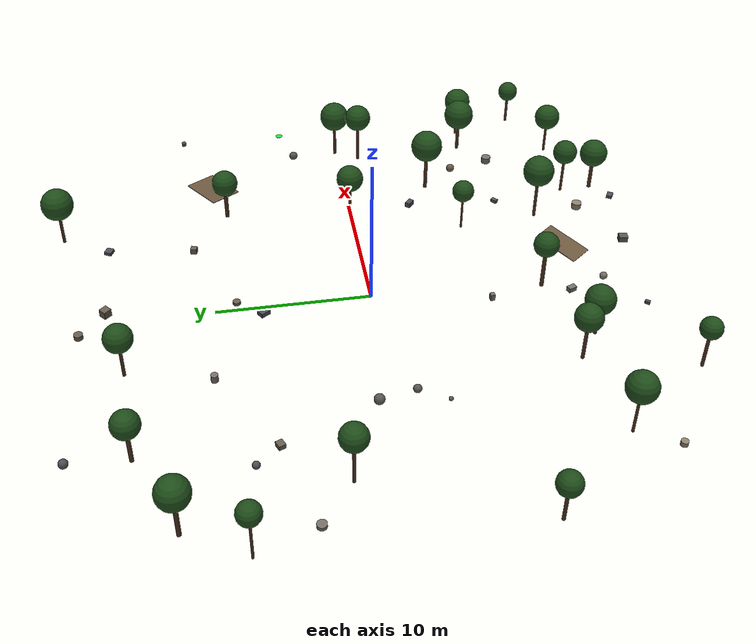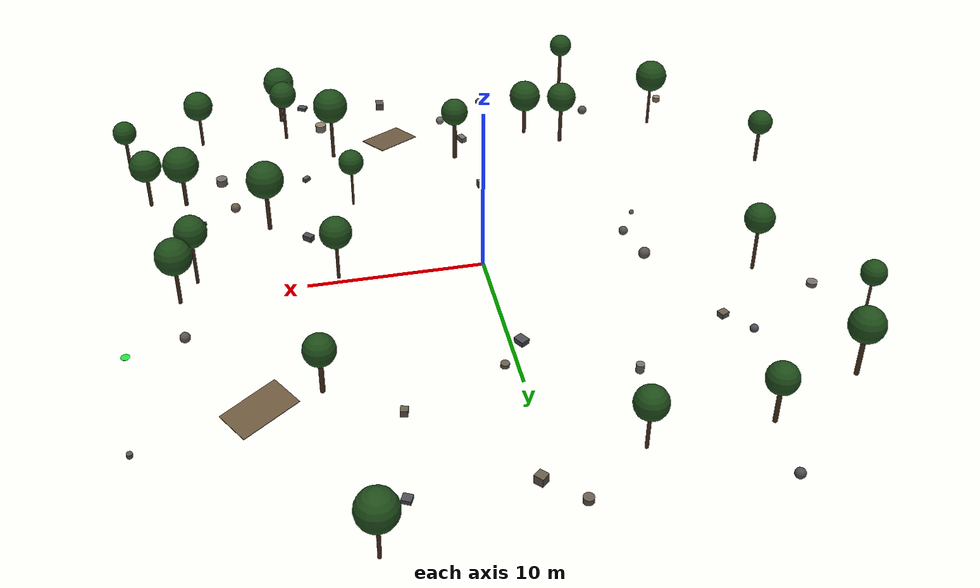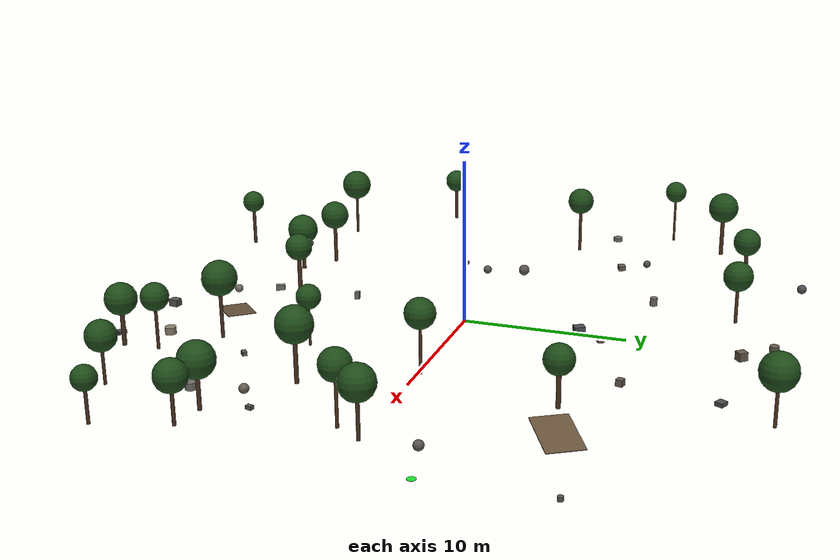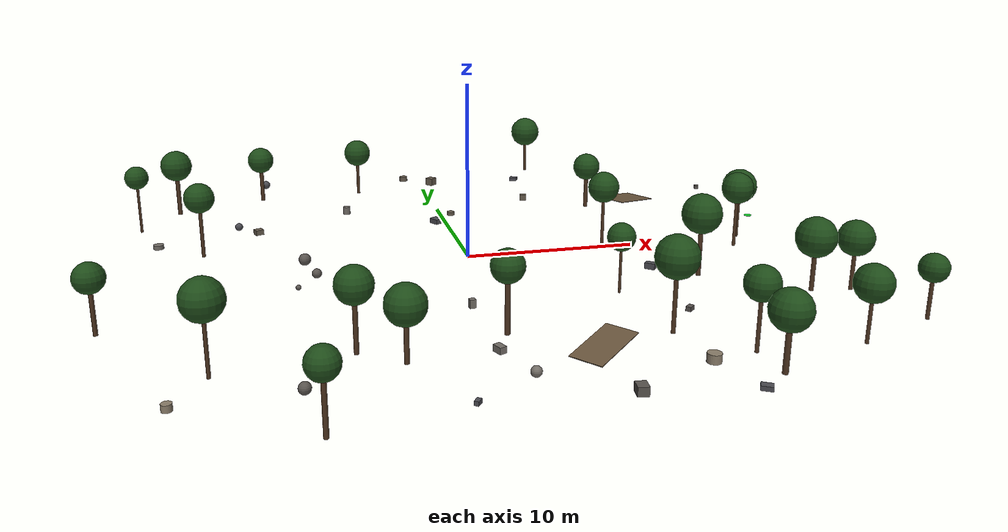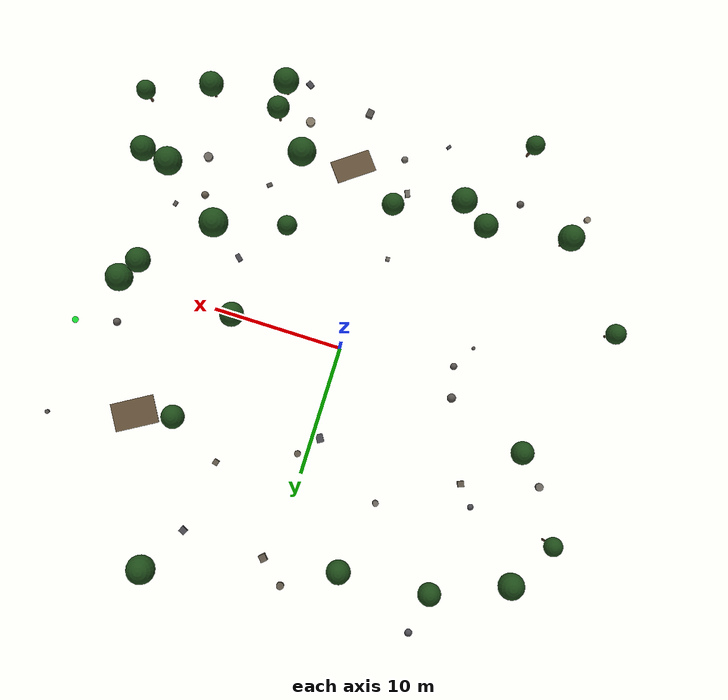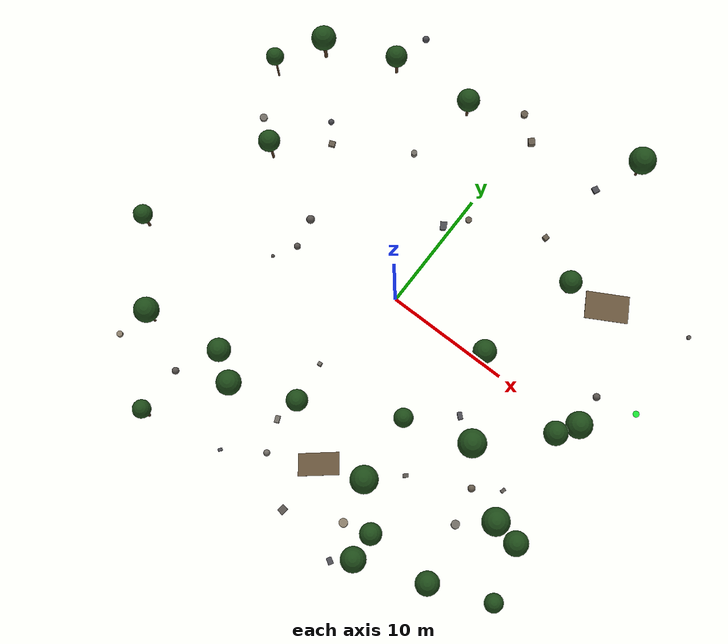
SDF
<sdf version="1.7">
 <world name="offroad_forest">
  <include><uri>model://sun</uri></include>
  <model name="goal_marker">
   <static>true</static>
   <pose>20.000 4.000 0.010 0.0000 0.0000 0.0000</pose>
   <link name="link">
    <visual name="v0">
     <geometry><cylinder><radius>0.250</radius><length>0.020</length></cylinder></geometry>
     <material>
      <ambient>0.10 0.90 0.20 1</ambient>
      <diffuse>0.10 0.90 0.20 1</diffuse>
      <specular>0.02 0.02 0.02 1</specular>
     </material>
    </visual>
   </link>
  </model>
  <model name="slope_0">
   <static>true</static>
   <pose>13.420 9.439 0.169 0.0000 -0.1097 -2.6083</pose>
   <link name="link">
    <collision name="c0"><geometry><box><size>3.456 2.163 0.040</size></box></geometry></collision>
    <visual name="v0">
     <geometry><box><size>3.456 2.163 0.040</size></box></geometry>
     <material>
      <ambient>0.42 0.34 0.24 1</ambient>
      <diffuse>0.42 0.34 0.24 1</diffuse>
      <specular>0.02 0.02 0.02 1</specular>
     </material>
    </visual>
   </link>
  </model>
  <model name="slope_1">
   <static>true</static>
   <pose>3.248 -13.665 0.229 0.0000 -0.1576 0.6711</pose>
   <link name="link">
    <collision name="c0"><geometry><box><size>3.170 1.716 0.040</size></box></geometry></collision>
    <visual name="v0">
     <geometry><box><size>3.170 1.716 0.040</size></box></geometry>
     <material>
      <ambient>0.42 0.34 0.24 1</ambient>
      <diffuse>0.42 0.34 0.24 1</diffuse>
      <specular>0.02 0.02 0.02 1</specular>
     </material>
    </visual>
   </link>
  </model>
  <model name="tree_0">
   <static>true</static>
   <pose>8.920 19.793 0.000 0.0000 0.0000 0.0000</pose>
   <link name="link">
    <collision name="c0">
     <pose>0.000 0.000 1.297 0 0 0</pose>
     <geometry><cylinder><radius>0.100</radius><length>2.594</length></cylinder></geometry>
    </collision>
    <visual name="v0">
     <pose>0.000 0.000 1.297 0 0 0</pose>
     <geometry><cylinder><radius>0.100</radius><length>2.594</length></cylinder></geometry>
     <material>
      <ambient>0.30 0.20 0.12 1</ambient>
      <diffuse>0.30 0.20 0.12 1</diffuse>
      <specular>0.02 0.02 0.02 1</specular>
     </material>
    </visual>
    <visual name="v1">
     <pose>0.000 0.000 3.133 0 0 0</pose>
     <geometry><sphere><radius>1.080</radius></sphere></geometry>
     <material>
      <ambient>0.12 0.30 0.10 1</ambient>
      <diffuse>0.12 0.30 0.10 1</diffuse>
      <specular>0.02 0.02 0.02 1</specular>
     </material>
    </visual>
   </link>
  </model>
  <model name="tree_1">
   <static>true</static>
   <pose>-9.270 -18.563 0.000 0.0000 0.0000 0.0000</pose>
   <link name="link">
    <collision name="c0">
     <pose>0.000 0.000 1.322 0 0 0</pose>
     <geometry><cylinder><radius>0.108</radius><length>2.645</length></cylinder></geometry>
    </collision>
    <visual name="v0">
     <pose>0.000 0.000 1.322 0 0 0</pose>
     <geometry><cylinder><radius>0.108</radius><length>2.645</length></cylinder></geometry>
     <material>
      <ambient>0.30 0.20 0.12 1</ambient>
      <diffuse>0.30 0.20 0.12 1</diffuse>
      <specular>0.02 0.02 0.02 1</specular>
     </material>
    </visual>
    <visual name="v1">
     <pose>0.000 0.000 3.000 0 0 0</pose>
     <geometry><sphere><radius>0.711</radius></sphere></geometry>
     <material>
      <ambient>0.12 0.30 0.10 1</ambient>
      <diffuse>0.12 0.30 0.10 1</diffuse>
      <specular>0.02 0.02 0.02 1</specular>
     </material>
    </visual>
   </link>
  </model>
  <model name="tree_2">
   <static>true</static>
   <pose>-4.799 15.672 0.000 0.0000 0.0000 0.0000</pose>
   <link name="link">
    <collision name="c0">
     <pose>0.000 0.000 1.259 0 0 0</pose>
     <geometry><cylinder><radius>0.103</radius><length>2.518</length></cylinder></geometry>
    </collision>
    <visual name="v0">
     <pose>0.000 0.000 1.259 0 0 0</pose>
     <geometry><cylinder><radius>0.103</radius><length>2.518</length></cylinder></geometry>
     <material>
      <ambient>0.30 0.20 0.12 1</ambient>
      <diffuse>0.30 0.20 0.12 1</diffuse>
      <specular>0.02 0.02 0.02 1</specular>
     </material>
    </visual>
    <visual name="v1">
     <pose>0.000 0.000 2.974 0 0 0</pose>
     <geometry><sphere><radius>0.910</radius></sphere></geometry>
     <material>
      <ambient>0.12 0.30 0.10 1</ambient>
      <diffuse>0.12 0.30 0.10 1</diffuse>
      <specular>0.02 0.02 0.02 1</specular>
     </material>
    </visual>
   </link>
  </model>
  <model name="tree_3">
   <static>true</static>
   <pose>-19.046 -6.994 0.000 0.0000 0.0000 0.0000</pose>
   <link name="link">
    <collision name="c0">
     <pose>0.000 0.000 1.218 0 0 0</pose>
     <geometry><cylinder><radius>0.109</radius><length>2.436</length></cylinder></geometry>
    </collision>
    <visual name="v0">
     <pose>0.000 0.000 1.218 0 0 0</pose>
     <geometry><cylinder><radius>0.109</radius><length>2.436</length></cylinder></geometry>
     <material>
      <ambient>0.30 0.20 0.12 1</ambient>
      <diffuse>0.30 0.20 0.12 1</diffuse>
      <specular>0.02 0.02 0.02 1</specular>
     </material>
    </visual>
    <visual name="v1">
     <pose>0.000 0.000 2.813 0 0 0</pose>
     <geometry><sphere><radius>0.755</radius></sphere></geometry>
     <material>
      <ambient>0.12 0.30 0.10 1</ambient>
      <diffuse>0.12 0.30 0.10 1</diffuse>
      <specular>0.02 0.02 0.02 1</specular>
     </material>
    </visual>
   </link>
  </model>
  <model name="tree_4">
   <static>true</static>
   <pose>6.979 -12.726 0.000 0.0000 0.0000 0.0000</pose>
   <link name="link">
    <collision name="c0">
     <pose>0.000 0.000 1.599 0 0 0</pose>
     <geometry><cylinder><radius>0.106</radius><length>3.199</length></cylinder></geometry>
    </collision>
    <visual name="v0">
     <pose>0.000 0.000 1.599 0 0 0</pose>
     <geometry><cylinder><radius>0.106</radius><length>3.199</length></cylinder></geometry>
     <material>
      <ambient>0.30 0.20 0.12 1</ambient>
      <diffuse>0.30 0.20 0.12 1</diffuse>
      <specular>0.02 0.02 0.02 1</specular>
     </material>
    </visual>
    <visual name="v1">
     <pose>0.000 0.000 3.727 0 0 0</pose>
     <geometry><sphere><radius>1.057</radius></sphere></geometry>
     <material>
      <ambient>0.12 0.30 0.10 1</ambient>
      <diffuse>0.12 0.30 0.10 1</diffuse>
      <specular>0.02 0.02 0.02 1</specular>
     </material>
    </visual>
   </link>
  </model>
  <model name="tree_5">
   <static>true</static>
   <pose>11.590 -5.849 0.000 0.0000 0.0000 0.0000</pose>
   <link name="link">
    <collision name="c0">
     <pose>0.000 0.000 1.467 0 0 0</pose>
     <geometry><cylinder><radius>0.126</radius><length>2.934</length></cylinder></geometry>
    </collision>
    <visual name="v0">
     <pose>0.000 0.000 1.467 0 0 0</pose>
     <geometry><cylinder><radius>0.126</radius><length>2.934</length></cylinder></geometry>
     <material>
      <ambient>0.30 0.20 0.12 1</ambient>
      <diffuse>0.30 0.20 0.12 1</diffuse>
      <specular>0.02 0.02 0.02 1</specular>
     </material>
    </visual>
    <visual name="v1">
     <pose>0.000 0.000 3.481 0 0 0</pose>
     <geometry><sphere><radius>1.092</radius></sphere></geometry>
     <material>
      <ambient>0.12 0.30 0.10 1</ambient>
      <diffuse>0.12 0.30 0.10 1</diffuse>
      <specular>0.02 0.02 0.02 1</specular>
     </material>
    </visual>
   </link>
  </model>
  <model name="tree_6">
   <static>true</static>
   <pose>10.160 8.606 0.000 0.0000 0.0000 0.0000</pose>
   <link name="link">
    <collision name="c0">
     <pose>0.000 0.000 1.181 0 0 0</pose>
     <geometry><cylinder><radius>0.137</radius><length>2.361</length></cylinder></geometry>
    </collision>
    <visual name="v0">
     <pose>0.000 0.000 1.181 0 0 0</pose>
     <geometry><cylinder><radius>0.137</radius><length>2.361</length></cylinder></geometry>
     <material>
      <ambient>0.30 0.20 0.12 1</ambient>
      <diffuse>0.30 0.20 0.12 1</diffuse>
      <specular>0.02 0.02 0.02 1</specular>
     </material>
    </visual>
    <visual name="v1">
     <pose>0.000 0.000 2.803 0 0 0</pose>
     <geometry><sphere><radius>0.885</radius></sphere></geometry>
     <material>
      <ambient>0.12 0.30 0.10 1</ambient>
      <diffuse>0.12 0.30 0.10 1</diffuse>
      <specular>0.02 0.02 0.02 1</specular>
     </material>
    </visual>
   </link>
  </model>
  <model name="tree_7">
   <static>true</static>
   <pose>16.993 0.034 0.000 0.0000 0.0000 0.0000</pose>
   <link name="link">
    <collision name="c0">
     <pose>0.000 0.000 1.345 0 0 0</pose>
     <geometry><cylinder><radius>0.107</radius><length>2.690</length></cylinder></geometry>
    </collision>
    <visual name="v0">
     <pose>0.000 0.000 1.345 0 0 0</pose>
     <geometry><cylinder><radius>0.107</radius><length>2.690</length></cylinder></geometry>
     <material>
      <ambient>0.30 0.20 0.12 1</ambient>
      <diffuse>0.30 0.20 0.12 1</diffuse>
      <specular>0.02 0.02 0.02 1</specular>
     </material>
    </visual>
    <visual name="v1">
     <pose>0.000 0.000 3.206 0 0 0</pose>
     <geometry><sphere><radius>1.033</radius></sphere></geometry>
     <material>
      <ambient>0.12 0.30 0.10 1</ambient>
      <diffuse>0.12 0.30 0.10 1</diffuse>
      <specular>0.02 0.02 0.02 1</specular>
     </material>
    </visual>
   </link>
  </model>
  <model name="tree_8">
   <static>true</static>
   <pose>15.988 -1.560 0.000 0.0000 0.0000 0.0000</pose>
   <link name="link">
    <collision name="c0">
     <pose>0.000 0.000 1.541 0 0 0</pose>
     <geometry><cylinder><radius>0.095</radius><length>3.083</length></cylinder></geometry>
    </collision>
    <visual name="v0">
     <pose>0.000 0.000 1.541 0 0 0</pose>
     <geometry><cylinder><radius>0.095</radius><length>3.083</length></cylinder></geometry>
     <material>
      <ambient>0.30 0.20 0.12 1</ambient>
      <diffuse>0.30 0.20 0.12 1</diffuse>
      <specular>0.02 0.02 0.02 1</specular>
     </material>
    </visual>
    <visual name="v1">
     <pose>0.000 0.000 3.546 0 0 0</pose>
     <geometry><sphere><radius>0.927</radius></sphere></geometry>
     <material>
      <ambient>0.12 0.30 0.10 1</ambient>
      <diffuse>0.12 0.30 0.10 1</diffuse>
      <specular>0.02 0.02 0.02 1</specular>
     </material>
    </visual>
   </link>
  </model>
  <model name="tree_9">
   <static>true</static>
   <pose>-0.536 -11.128 0.000 0.0000 0.0000 0.0000</pose>
   <link name="link">
    <collision name="c0">
     <pose>0.000 0.000 1.462 0 0 0</pose>
     <geometry><cylinder><radius>0.134</radius><length>2.924</length></cylinder></geometry>
    </collision>
    <visual name="v0">
     <pose>0.000 0.000 1.462 0 0 0</pose>
     <geometry><cylinder><radius>0.134</radius><length>2.924</length></cylinder></geometry>
     <material>
      <ambient>0.30 0.20 0.12 1</ambient>
      <diffuse>0.30 0.20 0.12 1</diffuse>
      <specular>0.02 0.02 0.02 1</specular>
     </material>
    </visual>
    <visual name="v1">
     <pose>0.000 0.000 3.339 0 0 0</pose>
     <geometry><sphere><radius>0.830</radius></sphere></geometry>
     <material>
      <ambient>0.12 0.30 0.10 1</ambient>
      <diffuse>0.12 0.30 0.10 1</diffuse>
      <specular>0.02 0.02 0.02 1</specular>
     </material>
    </visual>
   </link>
  </model>
  <model name="tree_10">
   <static>true</static>
   <pose>16.318 -9.274 0.000 0.0000 0.0000 0.0000</pose>
   <link name="link">
    <collision name="c0">
     <pose>0.000 0.000 1.183 0 0 0</pose>
     <geometry><cylinder><radius>0.119</radius><length>2.366</length></cylinder></geometry>
    </collision>
    <visual name="v0">
     <pose>0.000 0.000 1.183 0 0 0</pose>
     <geometry><cylinder><radius>0.119</radius><length>2.366</length></cylinder></geometry>
     <material>
      <ambient>0.30 0.20 0.12 1</ambient>
      <diffuse>0.30 0.20 0.12 1</diffuse>
      <specular>0.02 0.02 0.02 1</specular>
     </material>
    </visual>
    <visual name="v1">
     <pose>0.000 0.000 2.898 0 0 0</pose>
     <geometry><sphere><radius>1.065</radius></sphere></geometry>
     <material>
      <ambient>0.12 0.30 0.10 1</ambient>
      <diffuse>0.12 0.30 0.10 1</diffuse>
      <specular>0.02 0.02 0.02 1</specular>
     </material>
    </visual>
   </link>
  </model>
  <model name="tree_11">
   <static>true</static>
   <pose>8.248 0.170 0.000 0.0000 0.0000 0.0000</pose>
   <link name="link">
    <collision name="c0">
     <pose>0.000 0.000 1.579 0 0 0</pose>
     <geometry><cylinder><radius>0.092</radius><length>3.157</length></cylinder></geometry>
    </collision>
    <visual name="v0">
     <pose>0.000 0.000 1.579 0 0 0</pose>
     <geometry><cylinder><radius>0.092</radius><length>3.157</length></cylinder></geometry>
     <material>
      <ambient>0.30 0.20 0.12 1</ambient>
      <diffuse>0.30 0.20 0.12 1</diffuse>
      <specular>0.02 0.02 0.02 1</specular>
     </material>
    </visual>
    <visual name="v1">
     <pose>0.000 0.000 3.611 0 0 0</pose>
     <geometry><sphere><radius>0.907</radius></sphere></geometry>
     <material>
      <ambient>0.12 0.30 0.10 1</ambient>
      <diffuse>0.12 0.30 0.10 1</diffuse>
      <specular>0.02 0.02 0.02 1</specular>
     </material>
    </visual>
   </link>
  </model>
  <model name="tree_12">
   <static>true</static>
   <pose>-7.526 -11.687 0.000 0.0000 0.0000 0.0000</pose>
   <link name="link">
    <collision name="c0">
     <pose>0.000 0.000 1.394 0 0 0</pose>
     <geometry><cylinder><radius>0.116</radius><length>2.788</length></cylinder></geometry>
    </collision>
    <visual name="v0">
     <pose>0.000 0.000 1.394 0 0 0</pose>
     <geometry><cylinder><radius>0.116</radius><length>2.788</length></cylinder></geometry>
     <material>
      <ambient>0.30 0.20 0.12 1</ambient>
      <diffuse>0.30 0.20 0.12 1</diffuse>
      <specular>0.02 0.02 0.02 1</specular>
     </material>
    </visual>
    <visual name="v1">
     <pose>0.000 0.000 3.240 0 0 0</pose>
     <geometry><sphere><radius>0.905</radius></sphere></geometry>
     <material>
      <ambient>0.12 0.30 0.10 1</ambient>
      <diffuse>0.12 0.30 0.10 1</diffuse>
      <specular>0.02 0.02 0.02 1</specular>
     </material>
    </visual>
   </link>
  </model>
  <model name="tree_13">
   <static>true</static>
   <pose>-16.985 12.816 0.000 0.0000 0.0000 0.0000</pose>
   <link name="link">
    <collision name="c0">
     <pose>0.000 0.000 1.412 0 0 0</pose>
     <geometry><cylinder><radius>0.135</radius><length>2.823</length></cylinder></geometry>
    </collision>
    <visual name="v0">
     <pose>0.000 0.000 1.412 0 0 0</pose>
     <geometry><cylinder><radius>0.135</radius><length>2.823</length></cylinder></geometry>
     <material>
      <ambient>0.30 0.20 0.12 1</ambient>
      <diffuse>0.30 0.20 0.12 1</diffuse>
      <specular>0.02 0.02 0.02 1</specular>
     </material>
    </visual>
    <visual name="v1">
     <pose>0.000 0.000 3.318 0 0 0</pose>
     <geometry><sphere><radius>0.990</radius></sphere></geometry>
     <material>
      <ambient>0.12 0.30 0.10 1</ambient>
      <diffuse>0.12 0.30 0.10 1</diffuse>
      <specular>0.02 0.02 0.02 1</specular>
     </material>
    </visual>
   </link>
  </model>
  <model name="tree_14">
   <static>true</static>
   <pose>9.791 -17.650 0.000 0.0000 0.0000 0.0000</pose>
   <link name="link">
    <collision name="c0">
     <pose>0.000 0.000 1.196 0 0 0</pose>
     <geometry><cylinder><radius>0.134</radius><length>2.391</length></cylinder></geometry>
    </collision>
    <visual name="v0">
     <pose>0.000 0.000 1.196 0 0 0</pose>
     <geometry><cylinder><radius>0.134</radius><length>2.391</length></cylinder></geometry>
     <material>
      <ambient>0.30 0.20 0.12 1</ambient>
      <diffuse>0.30 0.20 0.12 1</diffuse>
      <specular>0.02 0.02 0.02 1</specular>
     </material>
    </visual>
    <visual name="v1">
     <pose>0.000 0.000 2.872 0 0 0</pose>
     <geometry><sphere><radius>0.961</radius></sphere></geometry>
     <material>
      <ambient>0.12 0.30 0.10 1</ambient>
      <diffuse>0.12 0.30 0.10 1</diffuse>
      <specular>0.02 0.02 0.02 1</specular>
     </material>
    </visual>
   </link>
  </model>
  <model name="tree_15">
   <static>true</static>
   <pose>15.020 -15.749 0.000 0.0000 0.0000 0.0000</pose>
   <link name="link">
    <collision name="c0">
     <pose>0.000 0.000 1.213 0 0 0</pose>
     <geometry><cylinder><radius>0.089</radius><length>2.427</length></cylinder></geometry>
    </collision>
    <visual name="v0">
     <pose>0.000 0.000 1.213 0 0 0</pose>
     <geometry><cylinder><radius>0.089</radius><length>2.427</length></cylinder></geometry>
     <material>
      <ambient>0.30 0.20 0.12 1</ambient>
      <diffuse>0.30 0.20 0.12 1</diffuse>
      <specular>0.02 0.02 0.02 1</specular>
     </material>
    </visual>
    <visual name="v1">
     <pose>0.000 0.000 2.881 0 0 0</pose>
     <geometry><sphere><radius>0.909</radius></sphere></geometry>
     <material>
      <ambient>0.12 0.30 0.10 1</ambient>
      <diffuse>0.12 0.30 0.10 1</diffuse>
      <specular>0.02 0.02 0.02 1</specular>
     </material>
    </visual>
   </link>
  </model>
  <model name="tree_16">
   <static>true</static>
   <pose>-11.581 15.223 0.000 0.0000 0.0000 0.0000</pose>
   <link name="link">
    <collision name="c0">
     <pose>0.000 0.000 1.222 0 0 0</pose>
     <geometry><cylinder><radius>0.130</radius><length>2.445</length></cylinder></geometry>
    </collision>
    <visual name="v0">
     <pose>0.000 0.000 1.222 0 0 0</pose>
     <geometry><cylinder><radius>0.130</radius><length>2.445</length></cylinder></geometry>
     <material>
      <ambient>0.30 0.20 0.12 1</ambient>
      <diffuse>0.30 0.20 0.12 1</diffuse>
      <specular>0.02 0.02 0.02 1</specular>
     </material>
    </visual>
    <visual name="v1">
     <pose>0.000 0.000 2.879 0 0 0</pose>
     <geometry><sphere><radius>0.869</radius></sphere></geometry>
     <material>
      <ambient>0.12 0.30 0.10 1</ambient>
      <diffuse>0.12 0.30 0.10 1</diffuse>
      <specular>0.02 0.02 0.02 1</specular>
     </material>
    </visual>
   </link>
  </model>
  <model name="tree_17">
   <static>true</static>
   <pose>-5.506 -13.125 0.000 0.0000 0.0000 0.0000</pose>
   <link name="link">
    <collision name="c0">
     <pose>0.000 0.000 1.116 0 0 0</pose>
     <geometry><cylinder><radius>0.120</radius><length>2.232</length></cylinder></geometry>
    </collision>
    <visual name="v0">
     <pose>0.000 0.000 1.116 0 0 0</pose>
     <geometry><cylinder><radius>0.120</radius><length>2.232</length></cylinder></geometry>
     <material>
      <ambient>0.30 0.20 0.12 1</ambient>
      <diffuse>0.30 0.20 0.12 1</diffuse>
      <specular>0.02 0.02 0.02 1</specular>
     </material>
    </visual>
    <visual name="v1">
     <pose>0.000 0.000 2.716 0 0 0</pose>
     <geometry><sphere><radius>0.969</radius></sphere></geometry>
     <material>
      <ambient>0.12 0.30 0.10 1</ambient>
      <diffuse>0.12 0.30 0.10 1</diffuse>
      <specular>0.02 0.02 0.02 1</specular>
     </material>
    </visual>
   </link>
  </model>
  <model name="tree_18">
   <static>true</static>
   <pose>-18.986 9.177 0.000 0.0000 0.0000 0.0000</pose>
   <link name="link">
    <collision name="c0">
     <pose>0.000 0.000 1.577 0 0 0</pose>
     <geometry><cylinder><radius>0.076</radius><length>3.155</length></cylinder></geometry>
    </collision>
    <visual name="v0">
     <pose>0.000 0.000 1.577 0 0 0</pose>
     <geometry><cylinder><radius>0.076</radius><length>3.155</length></cylinder></geometry>
     <material>
      <ambient>0.30 0.20 0.12 1</ambient>
      <diffuse>0.30 0.20 0.12 1</diffuse>
      <specular>0.02 0.02 0.02 1</specular>
     </material>
    </visual>
    <visual name="v1">
     <pose>0.000 0.000 3.509 0 0 0</pose>
     <geometry><sphere><radius>0.708</radius></sphere></geometry>
     <material>
      <ambient>0.12 0.30 0.10 1</ambient>
      <diffuse>0.12 0.30 0.10 1</diffuse>
      <specular>0.02 0.02 0.02 1</specular>
     </material>
    </visual>
   </link>
  </model>
  <model name="tree_19">
   <static>true</static>
   <pose>-13.715 -12.650 0.000 0.0000 0.0000 0.0000</pose>
   <link name="link">
    <collision name="c0">
     <pose>0.000 0.000 1.507 0 0 0</pose>
     <geometry><cylinder><radius>0.088</radius><length>3.013</length></cylinder></geometry>
    </collision>
    <visual name="v0">
     <pose>0.000 0.000 1.507 0 0 0</pose>
     <geometry><cylinder><radius>0.088</radius><length>3.013</length></cylinder></geometry>
     <material>
      <ambient>0.30 0.20 0.12 1</ambient>
      <diffuse>0.30 0.20 0.12 1</diffuse>
      <specular>0.02 0.02 0.02 1</specular>
     </material>
    </visual>
    <visual name="v1">
     <pose>0.000 0.000 3.502 0 0 0</pose>
     <geometry><sphere><radius>0.977</radius></sphere></geometry>
     <material>
      <ambient>0.12 0.30 0.10 1</ambient>
      <diffuse>0.12 0.30 0.10 1</diffuse>
      <specular>0.02 0.02 0.02 1</specular>
     </material>
    </visual>
   </link>
  </model>
  <model name="tree_20">
   <static>true</static>
   <pose>19.600 -13.943 0.000 0.0000 0.0000 0.0000</pose>
   <link name="link">
    <collision name="c0">
     <pose>0.000 0.000 1.122 0 0 0</pose>
     <geometry><cylinder><radius>0.097</radius><length>2.243</length></cylinder></geometry>
    </collision>
    <visual name="v0">
     <pose>0.000 0.000 1.122 0 0 0</pose>
     <geometry><cylinder><radius>0.097</radius><length>2.243</length></cylinder></geometry>
     <material>
      <ambient>0.30 0.20 0.12 1</ambient>
      <diffuse>0.30 0.20 0.12 1</diffuse>
      <specular>0.02 0.02 0.02 1</specular>
     </material>
    </visual>
    <visual name="v1">
     <pose>0.000 0.000 2.600 0 0 0</pose>
     <geometry><sphere><radius>0.715</radius></sphere></geometry>
     <material>
      <ambient>0.12 0.30 0.10 1</ambient>
      <diffuse>0.12 0.30 0.10 1</diffuse>
      <specular>0.02 0.02 0.02 1</specular>
     </material>
    </visual>
   </link>
  </model>
  <model name="tree_21">
   <static>true</static>
   <pose>9.698 -15.475 0.000 0.0000 0.0000 0.0000</pose>
   <link name="link">
    <collision name="c0">
     <pose>0.000 0.000 1.408 0 0 0</pose>
     <geometry><cylinder><radius>0.094</radius><length>2.815</length></cylinder></geometry>
    </collision>
    <visual name="v0">
     <pose>0.000 0.000 1.408 0 0 0</pose>
     <geometry><cylinder><radius>0.094</radius><length>2.815</length></cylinder></geometry>
     <material>
      <ambient>0.30 0.20 0.12 1</ambient>
      <diffuse>0.30 0.20 0.12 1</diffuse>
      <specular>0.02 0.02 0.02 1</specular>
     </material>
    </visual>
    <visual name="v1">
     <pose>0.000 0.000 3.233 0 0 0</pose>
     <geometry><sphere><radius>0.835</radius></sphere></geometry>
     <material>
      <ambient>0.12 0.30 0.10 1</ambient>
      <diffuse>0.12 0.30 0.10 1</diffuse>
      <specular>0.02 0.02 0.02 1</specular>
     </material>
    </visual>
   </link>
  </model>
  <model name="tree_22">
   <static>true</static>
   <pose>6.433 -7.348 0.000 0.0000 0.0000 0.0000</pose>
   <link name="link">
    <collision name="c0">
     <pose>0.000 0.000 1.324 0 0 0</pose>
     <geometry><cylinder><radius>0.072</radius><length>2.649</length></cylinder></geometry>
    </collision>
    <visual name="v0">
     <pose>0.000 0.000 1.324 0 0 0</pose>
     <geometry><cylinder><radius>0.072</radius><length>2.649</length></cylinder></geometry>
     <material>
      <ambient>0.30 0.20 0.12 1</ambient>
      <diffuse>0.30 0.20 0.12 1</diffuse>
      <specular>0.02 0.02 0.02 1</specular>
     </material>
    </visual>
    <visual name="v1">
     <pose>0.000 0.000 3.019 0 0 0</pose>
     <geometry><sphere><radius>0.741</radius></sphere></geometry>
     <material>
      <ambient>0.12 0.30 0.10 1</ambient>
      <diffuse>0.12 0.30 0.10 1</diffuse>
      <specular>0.02 0.02 0.02 1</specular>
     </material>
    </visual>
   </link>
  </model>
  <model name="tree_23">
   <static>true</static>
   <pose>-14.899 3.398 0.000 0.0000 0.0000 0.0000</pose>
   <link name="link">
    <collision name="c0">
     <pose>0.000 0.000 1.537 0 0 0</pose>
     <geometry><cylinder><radius>0.101</radius><length>3.075</length></cylinder></geometry>
    </collision>
    <visual name="v0">
     <pose>0.000 0.000 1.537 0 0 0</pose>
     <geometry><cylinder><radius>0.101</radius><length>3.075</length></cylinder></geometry>
     <material>
      <ambient>0.30 0.20 0.12 1</ambient>
      <diffuse>0.30 0.20 0.12 1</diffuse>
      <specular>0.02 0.02 0.02 1</specular>
     </material>
    </visual>
    <visual name="v1">
     <pose>0.000 0.000 3.503 0 0 0</pose>
     <geometry><sphere><radius>0.857</radius></sphere></geometry>
     <material>
      <ambient>0.12 0.30 0.10 1</ambient>
      <diffuse>0.12 0.30 0.10 1</diffuse>
      <specular>0.02 0.02 0.02 1</specular>
     </material>
    </visual>
   </link>
  </model>
  <model name="tree_24">
   <static>true</static>
   <pose>18.389 -9.636 0.000 0.0000 0.0000 0.0000</pose>
   <link name="link">
    <collision name="c0">
     <pose>0.000 0.000 1.172 0 0 0</pose>
     <geometry><cylinder><radius>0.106</radius><length>2.344</length></cylinder></geometry>
    </collision>
    <visual name="v0">
     <pose>0.000 0.000 1.172 0 0 0</pose>
     <geometry><cylinder><radius>0.106</radius><length>2.344</length></cylinder></geometry>
     <material>
      <ambient>0.30 0.20 0.12 1</ambient>
      <diffuse>0.30 0.20 0.12 1</diffuse>
      <specular>0.02 0.02 0.02 1</specular>
     </material>
    </visual>
    <visual name="v1">
     <pose>0.000 0.000 2.815 0 0 0</pose>
     <geometry><sphere><radius>0.942</radius></sphere></geometry>
     <material>
      <ambient>0.12 0.30 0.10 1</ambient>
      <diffuse>0.12 0.30 0.10 1</diffuse>
      <specular>0.02 0.02 0.02 1</specular>
     </material>
    </visual>
   </link>
  </model>
  <model name="rock_0">
   <static>true</static>
   <pose>-9.881 -14.732 0.000 0.0000 0.0000 1.0717</pose>
   <link name="link">
    <collision name="c0">
     <pose>0.000 0.000 0.155 0 0 0</pose>
     <geometry><sphere><radius>0.282</radius></sphere></geometry>
    </collision>
    <visual name="v0">
     <pose>0.000 0.000 0.155 0 0 0</pose>
     <geometry><sphere><radius>0.282</radius></sphere></geometry>
     <material>
      <ambient>0.35 0.33 0.31 1</ambient>
      <diffuse>0.35 0.33 0.31 1</diffuse>
      <specular>0.02 0.02 0.02 1</specular>
     </material>
    </visual>
   </link>
  </model>
  <model name="rock_1">
   <static>true</static>
   <pose>8.324 -18.744 0.000 0.0000 0.0000 2.6163</pose>
   <link name="link">
    <collision name="c0">
     <pose>0.000 0.000 0.108 0 0 0</pose>
     <geometry><box><size>0.536 0.401 0.215</size></box></geometry>
    </collision>
    <visual name="v0">
     <pose>0.000 0.000 0.108 0 0 0</pose>
     <geometry><box><size>0.536 0.401 0.215</size></box></geometry>
     <material>
      <ambient>0.30 0.30 0.32 1</ambient>
      <diffuse>0.30 0.30 0.32 1</diffuse>
      <specular>0.02 0.02 0.02 1</specular>
     </material>
    </visual>
   </link>
  </model>
  <model name="rock_2">
   <static>true</static>
   <pose>-9.736 -3.079 0.000 0.0000 0.0000 0.7801</pose>
   <link name="link">
    <collision name="c0">
     <pose>0.000 0.000 0.079 0 0 0</pose>
     <geometry><sphere><radius>0.143</radius></sphere></geometry>
    </collision>
    <visual name="v0">
     <pose>0.000 0.000 0.079 0 0 0</pose>
     <geometry><sphere><radius>0.143</radius></sphere></geometry>
     <material>
      <ambient>0.35 0.33 0.31 1</ambient>
      <diffuse>0.35 0.33 0.31 1</diffuse>
      <specular>0.02 0.02 0.02 1</specular>
     </material>
    </visual>
   </link>
  </model>
  <model name="rock_3">
   <static>true</static>
   <pose>8.951 -10.365 0.000 0.0000 0.0000 -2.4431</pose>
   <link name="link">
    <collision name="c0">
     <pose>0.000 0.000 0.118 0 0 0</pose>
     <geometry><box><size>0.423 0.279 0.236</size></box></geometry>
    </collision>
    <visual name="v0">
     <pose>0.000 0.000 0.118 0 0 0</pose>
     <geometry><box><size>0.423 0.279 0.236</size></box></geometry>
     <material>
      <ambient>0.35 0.33 0.31 1</ambient>
      <diffuse>0.35 0.33 0.31 1</diffuse>
      <specular>0.02 0.02 0.02 1</specular>
     </material>
    </visual>
   </link>
  </model>
  <model name="rock_4">
   <static>true</static>
   <pose>-1.424 -7.611 0.000 0.0000 0.0000 0.1303</pose>
   <link name="link">
    <collision name="c0">
     <pose>0.000 0.000 0.229 0 0 0</pose>
     <geometry><box><size>0.297 0.293 0.458</size></box></geometry>
    </collision>
    <visual name="v0">
     <pose>0.000 0.000 0.229 0 0 0</pose>
     <geometry><box><size>0.297 0.293 0.458</size></box></geometry>
     <material>
      <ambient>0.45 0.43 0.40 1</ambient>
      <diffuse>0.45 0.43 0.40 1</diffuse>
      <specular>0.02 0.02 0.02 1</specular>
     </material>
    </visual>
   </link>
  </model>
  <model name="rock_5">
   <static>true</static>
   <pose>3.243 -17.951 0.000 0.0000 0.0000 1.4384</pose>
   <link name="link">
    <collision name="c0">
     <pose>0.000 0.000 0.217 0 0 0</pose>
     <geometry><box><size>0.592 0.504 0.433</size></box></geometry>
    </collision>
    <visual name="v0">
     <pose>0.000 0.000 0.217 0 0 0</pose>
     <geometry><box><size>0.592 0.504 0.433</size></box></geometry>
     <material>
      <ambient>0.35 0.33 0.31 1</ambient>
      <diffuse>0.35 0.33 0.31 1</diffuse>
      <specular>0.02 0.02 0.02 1</specular>
     </material>
    </visual>
   </link>
  </model>
  <model name="rock_6">
   <static>true</static>
   <pose>0.768 16.858 0.000 0.0000 0.0000 -0.8408</pose>
   <link name="link">
    <collision name="c0">
     <pose>0.000 0.000 0.260 0 0 0</pose>
     <geometry><box><size>0.548 0.530 0.521</size></box></geometry>
    </collision>
    <visual name="v0">
     <pose>0.000 0.000 0.260 0 0 0</pose>
     <geometry><box><size>0.548 0.530 0.521</size></box></geometry>
     <material>
      <ambient>0.40 0.36 0.30 1</ambient>
      <diffuse>0.40 0.36 0.30 1</diffuse>
      <specular>0.02 0.02 0.02 1</specular>
     </material>
    </visual>
   </link>
  </model>
  <model name="rock_7">
   <static>true</static>
   <pose>7.412 -15.954 0.000 0.0000 0.0000 -3.0219</pose>
   <link name="link">
    <collision name="c0">
     <pose>0.000 0.000 0.218 0 0 0</pose>
     <geometry><cylinder><radius>0.335</radius><length>0.435</length></cylinder></geometry>
    </collision>
    <visual name="v0">
     <pose>0.000 0.000 0.218 0 0 0</pose>
     <geometry><cylinder><radius>0.335</radius><length>0.435</length></cylinder></geometry>
     <material>
      <ambient>0.55 0.50 0.42 1</ambient>
      <diffuse>0.55 0.50 0.42 1</diffuse>
      <specular>0.02 0.02 0.02 1</specular>
     </material>
    </visual>
   </link>
  </model>
  <model name="rock_8">
   <static>true</static>
   <pose>-17.600 5.492 0.000 0.0000 0.0000 1.9607</pose>
   <link name="link">
    <collision name="c0">
     <pose>0.000 0.000 0.127 0 0 0</pose>
     <geometry><cylinder><radius>0.299</radius><length>0.253</length></cylinder></geometry>
    </collision>
    <visual name="v0">
     <pose>0.000 0.000 0.127 0 0 0</pose>
     <geometry><cylinder><radius>0.299</radius><length>0.253</length></cylinder></geometry>
     <material>
      <ambient>0.45 0.43 0.40 1</ambient>
      <diffuse>0.45 0.43 0.40 1</diffuse>
      <specular>0.02 0.02 0.02 1</specular>
     </material>
    </visual>
   </link>
  </model>
  <model name="rock_9">
   <static>true</static>
   <pose>-0.382 -15.369 0.000 0.0000 0.0000 -3.1081</pose>
   <link name="link">
    <collision name="c0">
     <pose>0.000 0.000 0.142 0 0 0</pose>
     <geometry><sphere><radius>0.257</radius></sphere></geometry>
    </collision>
    <visual name="v0">
     <pose>0.000 0.000 0.142 0 0 0</pose>
     <geometry><sphere><radius>0.257</radius></sphere></geometry>
     <material>
      <ambient>0.45 0.43 0.40 1</ambient>
      <diffuse>0.45 0.43 0.40 1</diffuse>
      <specular>0.02 0.02 0.02 1</specular>
     </material>
    </visual>
   </link>
  </model>
  <model name="rock_10">
   <static>true</static>
   <pose>-15.131 -15.129 0.000 0.0000 0.0000 -0.6595</pose>
   <link name="link">
    <collision name="c0">
     <pose>0.000 0.000 0.162 0 0 0</pose>
     <geometry><cylinder><radius>0.229</radius><length>0.325</length></cylinder></geometry>
    </collision>
    <visual name="v0">
     <pose>0.000 0.000 0.162 0 0 0</pose>
     <geometry><cylinder><radius>0.229</radius><length>0.325</length></cylinder></geometry>
     <material>
      <ambient>0.55 0.50 0.42 1</ambient>
      <diffuse>0.55 0.50 0.42 1</diffuse>
      <specular>0.02 0.02 0.02 1</specular>
     </material>
    </visual>
   </link>
  </model>
  <model name="rock_11">
   <static>true</static>
   <pose>6.366 11.088 0.000 0.0000 0.0000 2.8882</pose>
   <link name="link">
    <collision name="c0">
     <pose>0.000 0.000 0.204 0 0 0</pose>
     <geometry><box><size>0.401 0.414 0.408</size></box></geometry>
    </collision>
    <visual name="v0">
     <pose>0.000 0.000 0.204 0 0 0</pose>
     <geometry><box><size>0.401 0.414 0.408</size></box></geometry>
     <material>
      <ambient>0.40 0.36 0.30 1</ambient>
      <diffuse>0.40 0.36 0.30 1</diffuse>
      <specular>0.02 0.02 0.02 1</specular>
     </material>
    </visual>
   </link>
  </model>
  <model name="rock_12">
   <static>true</static>
   <pose>-9.242 1.052 0.000 0.0000 0.0000 1.8769</pose>
   <link name="link">
    <collision name="c0">
     <pose>0.000 0.000 0.188 0 0 0</pose>
     <geometry><sphere><radius>0.341</radius></sphere></geometry>
    </collision>
    <visual name="v0">
     <pose>0.000 0.000 0.188 0 0 0</pose>
     <geometry><sphere><radius>0.341</radius></sphere></geometry>
     <material>
      <ambient>0.35 0.33 0.31 1</ambient>
      <diffuse>0.35 0.33 0.31 1</diffuse>
      <specular>0.02 0.02 0.02 1</specular>
     </material>
    </visual>
   </link>
  </model>
  <model name="rock_13">
   <static>true</static>
   <pose>13.440 -8.129 0.000 0.0000 0.0000 2.7147</pose>
   <link name="link">
    <collision name="c0">
     <pose>0.000 0.000 0.159 0 0 0</pose>
     <geometry><sphere><radius>0.289</radius></sphere></geometry>
    </collision>
    <visual name="v0">
     <pose>0.000 0.000 0.159 0 0 0</pose>
     <geometry><sphere><radius>0.289</radius></sphere></geometry>
     <material>
      <ambient>0.40 0.36 0.30 1</ambient>
      <diffuse>0.40 0.36 0.30 1</diffuse>
      <specular>0.02 0.02 0.02 1</specular>
     </material>
    </visual>
   </link>
  </model>
  <model name="rock_14">
   <static>true</static>
   <pose>7.166 16.743 0.000 0.0000 0.0000 -0.4546</pose>
   <link name="link">
    <collision name="c0">
     <pose>0.000 0.000 0.119 0 0 0</pose>
     <geometry><box><size>0.518 0.493 0.238</size></box></geometry>
    </collision>
    <visual name="v0">
     <pose>0.000 0.000 0.119 0 0 0</pose>
     <geometry><box><size>0.518 0.493 0.238</size></box></geometry>
     <material>
      <ambient>0.30 0.30 0.32 1</ambient>
      <diffuse>0.30 0.30 0.32 1</diffuse>
      <specular>0.02 0.02 0.02 1</specular>
     </material>
    </visual>
   </link>
  </model>
  <model name="rock_15">
   <static>true</static>
   <pose>-3.329 -17.326 0.000 0.0000 0.0000 -2.2211</pose>
   <link name="link">
    <collision name="c0">
     <pose>0.000 0.000 0.103 0 0 0</pose>
     <geometry><box><size>0.329 0.215 0.206</size></box></geometry>
    </collision>
    <visual name="v0">
     <pose>0.000 0.000 0.103 0 0 0</pose>
     <geometry><box><size>0.329 0.215 0.206</size></box></geometry>
     <material>
      <ambient>0.30 0.30 0.32 1</ambient>
      <diffuse>0.30 0.30 0.32 1</diffuse>
      <specular>0.02 0.02 0.02 1</specular>
     </material>
    </visual>
   </link>
  </model>
  <model name="rock_16">
   <static>true</static>
   <pose>15.406 -6.823 0.000 0.0000 0.0000 1.3094</pose>
   <link name="link">
    <collision name="c0">
     <pose>0.000 0.000 0.114 0 0 0</pose>
     <geometry><box><size>0.383 0.270 0.228</size></box></geometry>
    </collision>
    <visual name="v0">
     <pose>0.000 0.000 0.114 0 0 0</pose>
     <geometry><box><size>0.383 0.270 0.228</size></box></geometry>
     <material>
      <ambient>0.35 0.33 0.31 1</ambient>
      <diffuse>0.35 0.33 0.31 1</diffuse>
      <specular>0.02 0.02 0.02 1</specular>
     </material>
    </visual>
   </link>
  </model>
  <model name="rock_17">
   <static>true</static>
   <pose>0.660 8.615 0.000 0.0000 0.0000 -2.5374</pose>
   <link name="link">
    <collision name="c0">
     <pose>0.000 0.000 0.111 0 0 0</pose>
     <geometry><cylinder><radius>0.247</radius><length>0.221</length></cylinder></geometry>
    </collision>
    <visual name="v0">
     <pose>0.000 0.000 0.111 0 0 0</pose>
     <geometry><cylinder><radius>0.247</radius><length>0.221</length></cylinder></geometry>
     <material>
      <ambient>0.40 0.36 0.30 1</ambient>
      <diffuse>0.40 0.36 0.30 1</diffuse>
      <specular>0.02 0.02 0.02 1</specular>
     </material>
    </visual>
   </link>
  </model>
  <model name="rock_18">
   <static>true</static>
   <pose>19.805 11.313 0.000 0.0000 0.0000 -0.6022</pose>
   <link name="link">
    <collision name="c0">
     <pose>0.000 0.000 0.121 0 0 0</pose>
     <geometry><cylinder><radius>0.160</radius><length>0.243</length></cylinder></geometry>
    </collision>
    <visual name="v0">
     <pose>0.000 0.000 0.121 0 0 0</pose>
     <geometry><cylinder><radius>0.160</radius><length>0.243</length></cylinder></geometry>
     <material>
      <ambient>0.35 0.33 0.31 1</ambient>
      <diffuse>0.35 0.33 0.31 1</diffuse>
      <specular>0.02 0.02 0.02 1</specular>
     </material>
    </visual>
   </link>
  </model>
  <model name="rock_19">
   <static>true</static>
   <pose>9.470 -4.286 0.000 0.0000 0.0000 -0.7336</pose>
   <link name="link">
    <collision name="c0">
     <pose>0.000 0.000 0.176 0 0 0</pose>
     <geometry><box><size>0.573 0.363 0.353</size></box></geometry>
    </collision>
    <visual name="v0">
     <pose>0.000 0.000 0.176 0 0 0</pose>
     <geometry><box><size>0.573 0.363 0.353</size></box></geometry>
     <material>
      <ambient>0.30 0.30 0.32 1</ambient>
      <diffuse>0.30 0.30 0.32 1</diffuse>
      <specular>0.02 0.02 0.02 1</specular>
     </material>
    </visual>
   </link>
  </model>
  <model name="rock_20">
   <static>true</static>
   <pose>-1.100 18.479 0.000 0.0000 0.0000 1.2905</pose>
   <link name="link">
    <collision name="c0">
     <pose>0.000 0.000 0.165 0 0 0</pose>
     <geometry><cylinder><radius>0.285</radius><length>0.330</length></cylinder></geometry>
    </collision>
    <visual name="v0">
     <pose>0.000 0.000 0.165 0 0 0</pose>
     <geometry><cylinder><radius>0.285</radius><length>0.330</length></cylinder></geometry>
     <material>
      <ambient>0.40 0.36 0.30 1</ambient>
      <diffuse>0.40 0.36 0.30 1</diffuse>
      <specular>0.02 0.02 0.02 1</specular>
     </material>
    </visual>
   </link>
  </model>
  <model name="rock_21">
   <static>true</static>
   <pose>14.083 -11.000 0.000 0.0000 0.0000 1.6437</pose>
   <link name="link">
    <collision name="c0">
     <pose>0.000 0.000 0.222 0 0 0</pose>
     <geometry><cylinder><radius>0.330</radius><length>0.444</length></cylinder></geometry>
    </collision>
    <visual name="v0">
     <pose>0.000 0.000 0.222 0 0 0</pose>
     <geometry><cylinder><radius>0.330</radius><length>0.444</length></cylinder></geometry>
     <material>
      <ambient>0.45 0.43 0.40 1</ambient>
      <diffuse>0.45 0.43 0.40 1</diffuse>
      <specular>0.02 0.02 0.02 1</specular>
     </material>
    </visual>
   </link>
  </model>
  <model name="rock_22">
   <static>true</static>
   <pose>-1.348 -12.905 0.000 0.0000 0.0000 -1.1754</pose>
   <link name="link">
    <collision name="c0">
     <pose>0.000 0.000 0.165 0 0 0</pose>
     <geometry><box><size>0.550 0.361 0.329</size></box></geometry>
    </collision>
    <visual name="v0">
     <pose>0.000 0.000 0.165 0 0 0</pose>
     <geometry><box><size>0.550 0.361 0.329</size></box></geometry>
     <material>
      <ambient>0.45 0.43 0.40 1</ambient>
      <diffuse>0.45 0.43 0.40 1</diffuse>
      <specular>0.02 0.02 0.02 1</specular>
     </material>
    </visual>
   </link>
  </model>
  <model name="rock_23">
   <static>true</static>
   <pose>-11.380 18.904 0.000 0.0000 0.0000 -0.7176</pose>
   <link name="link">
    <collision name="c0">
     <pose>0.000 0.000 0.159 0 0 0</pose>
     <geometry><sphere><radius>0.289</radius></sphere></geometry>
    </collision>
    <visual name="v0">
     <pose>0.000 0.000 0.159 0 0 0</pose>
     <geometry><sphere><radius>0.289</radius></sphere></geometry>
     <material>
      <ambient>0.30 0.30 0.32 1</ambient>
      <diffuse>0.30 0.30 0.32 1</diffuse>
      <specular>0.02 0.02 0.02 1</specular>
     </material>
    </visual>
   </link>
  </model>
  <model name="rock_24">
   <static>true</static>
   <pose>16.855 3.209 0.000 0.0000 0.0000 -1.4174</pose>
   <link name="link">
    <collision name="c0">
     <pose>0.000 0.000 0.164 0 0 0</pose>
     <geometry><sphere><radius>0.298</radius></sphere></geometry>
    </collision>
    <visual name="v0">
     <pose>0.000 0.000 0.164 0 0 0</pose>
     <geometry><sphere><radius>0.298</radius></sphere></geometry>
     <material>
      <ambient>0.35 0.33 0.31 1</ambient>
      <diffuse>0.35 0.33 0.31 1</diffuse>
      <specular>0.02 0.02 0.02 1</specular>
     </material>
    </visual>
   </link>
  </model>
  <model name="rock_25">
   <static>true</static>
   <pose>-13.057 8.509 0.000 0.0000 0.0000 1.1228</pose>
   <link name="link">
    <collision name="c0">
     <pose>0.000 0.000 0.131 0 0 0</pose>
     <geometry><sphere><radius>0.239</radius></sphere></geometry>
    </collision>
    <visual name="v0">
     <pose>0.000 0.000 0.131 0 0 0</pose>
     <geometry><sphere><radius>0.239</radius></sphere></geometry>
     <material>
      <ambient>0.30 0.30 0.32 1</ambient>
      <diffuse>0.30 0.30 0.32 1</diffuse>
      <specular>0.02 0.02 0.02 1</specular>
     </material>
    </visual>
   </link>
  </model>
  <model name="rock_26">
   <static>true</static>
   <pose>-0.600 6.992 0.000 0.0000 0.0000 2.1186</pose>
   <link name="link">
    <collision name="c0">
     <pose>0.000 0.000 0.155 0 0 0</pose>
     <geometry><box><size>0.658 0.527 0.310</size></box></geometry>
    </collision>
    <visual name="v0">
     <pose>0.000 0.000 0.155 0 0 0</pose>
     <geometry><box><size>0.658 0.527 0.310</size></box></geometry>
     <material>
      <ambient>0.30 0.30 0.32 1</ambient>
      <diffuse>0.30 0.30 0.32 1</diffuse>
      <specular>0.02 0.02 0.02 1</specular>
     </material>
    </visual>
   </link>
  </model>
  <model name="rock_27">
   <static>true</static>
   <pose>-6.095 10.385 0.000 0.0000 0.0000 0.7130</pose>
   <link name="link">
    <collision name="c0">
     <pose>0.000 0.000 0.252 0 0 0</pose>
     <geometry><cylinder><radius>0.229</radius><length>0.505</length></cylinder></geometry>
    </collision>
    <visual name="v0">
     <pose>0.000 0.000 0.252 0 0 0</pose>
     <geometry><cylinder><radius>0.229</radius><length>0.505</length></cylinder></geometry>
     <material>
      <ambient>0.45 0.43 0.40 1</ambient>
      <diffuse>0.45 0.43 0.40 1</diffuse>
      <specular>0.02 0.02 0.02 1</specular>
     </material>
    </visual>
   </link>
  </model>
  <model name="rock_28">
   <static>true</static>
   <pose>-8.694 -1.304 0.000 0.0000 0.0000 -2.8018</pose>
   <link name="link">
    <collision name="c0">
     <pose>0.000 0.000 0.146 0 0 0</pose>
     <geometry><sphere><radius>0.266</radius></sphere></geometry>
    </collision>
    <visual name="v0">
     <pose>0.000 0.000 0.146 0 0 0</pose>
     <geometry><sphere><radius>0.266</radius></sphere></geometry>
     <material>
      <ambient>0.35 0.33 0.31 1</ambient>
      <diffuse>0.35 0.33 0.31 1</diffuse>
      <specular>0.02 0.02 0.02 1</specular>
     </material>
    </visual>
   </link>
  </model>
  <model name="rock_29">
   <static>true</static>
   <pose>-11.823 7.057 0.000 0.0000 0.0000 0.4040</pose>
   <link name="link">
    <collision name="c0">
     <pose>0.000 0.000 0.158 0 0 0</pose>
     <geometry><box><size>0.492 0.442 0.316</size></box></geometry>
    </collision>
    <visual name="v0">
     <pose>0.000 0.000 0.158 0 0 0</pose>
     <geometry><box><size>0.492 0.442 0.316</size></box></geometry>
     <material>
      <ambient>0.40 0.36 0.30 1</ambient>
      <diffuse>0.40 0.36 0.30 1</diffuse>
      <specular>0.02 0.02 0.02 1</specular>
     </material>
    </visual>
   </link>
  </model>
 </world>
</sdf>
